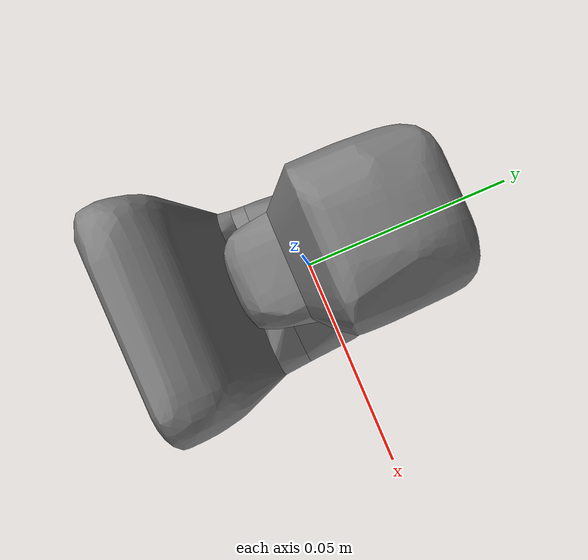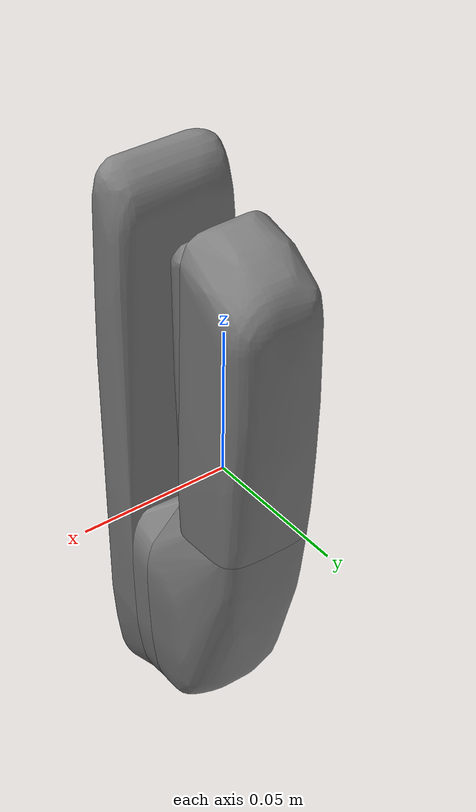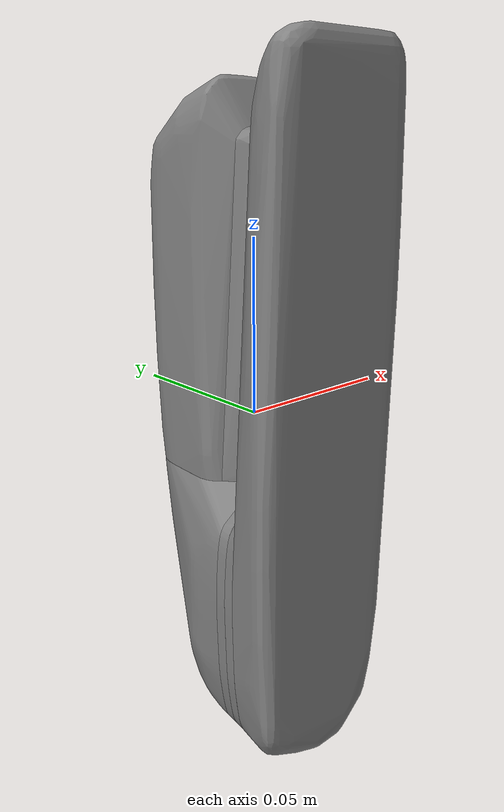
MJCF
<mujoco model="stapler_7c5f400773d940cdb2bc6884c990e888">
  <default>
    <default class="visual">
      <geom type="mesh" contype="0" conaffinity="0" group="1"/>
    </default>
    <default class="collision">
      <geom type="mesh" condim="6" group="0"/>
    </default>
  </default>
  <asset>
    <texture type="2d" name="texture" file="material_0.png"/>
    <material name="Material.001" texture="texture" specular="0.5" shininess="0.25"/>
    <mesh file="visual_mesh.obj" name="visual_mesh"/>
    <mesh file="meshes/convex_piece_0.obj" name="convex_piece_0"/>
    <mesh file="meshes/convex_piece_1.obj" name="convex_piece_1"/>
    <mesh file="meshes/convex_piece_2.obj" name="convex_piece_2"/>
    <mesh file="meshes/convex_piece_3.obj" name="convex_piece_3"/>
    <mesh file="meshes/convex_piece_4.obj" name="convex_piece_4"/>
    <mesh file="meshes/convex_piece_5.obj" name="convex_piece_5"/>
    <mesh file="meshes/convex_piece_6.obj" name="convex_piece_6"/>
  </asset>
  <worldbody>
    <body>
    <body name="object">
      <geom material="Material.001" mesh="visual_mesh" class="visual"/>
      <geom mesh="convex_piece_0" class="collision"/>
      <geom mesh="convex_piece_1" class="collision"/>
      <geom mesh="convex_piece_2" class="collision"/>
      <geom mesh="convex_piece_3" class="collision"/>
      <geom mesh="convex_piece_4" class="collision"/>
      <geom mesh="convex_piece_5" class="collision"/>
      <geom mesh="convex_piece_6" class="collision"/>
    </body>
      <site rgba="0 0 0 0" size="0.005" pos="0 0 -0.04" name="bottom_site" />
      <site rgba="0 0 0 0" size="0.005" pos="0 0 0.04" name="top_site" />
      <site rgba="0 0 0 0" size="0.005" pos="0.005 0.005 0" name="horizontal_radius_site" />
    </body>
  </worldbody>
</mujoco>
